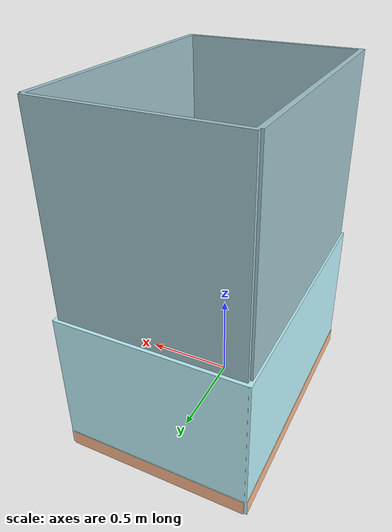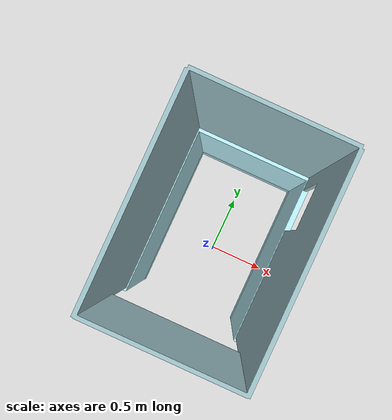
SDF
<?xml version="1.0" ?>
<sdf version="1.5">
  <model name="walls">
    <link name="link">
      <collision name="collision">
        <pose>0 0 0 0 0 0</pose>
        <geometry>
          <mesh>
            <uri>model://walls/meshes/walls.dae</uri>
            <scale>1 1 1</scale>
          </mesh>
        </geometry>
      </collision>
      <visual name="visual">
        <geometry>
          <mesh>
            <uri>model://walls/meshes/walls.dae</uri>
          </mesh>
        </geometry>
      </visual>
    </link>
  </model>
</sdf>
